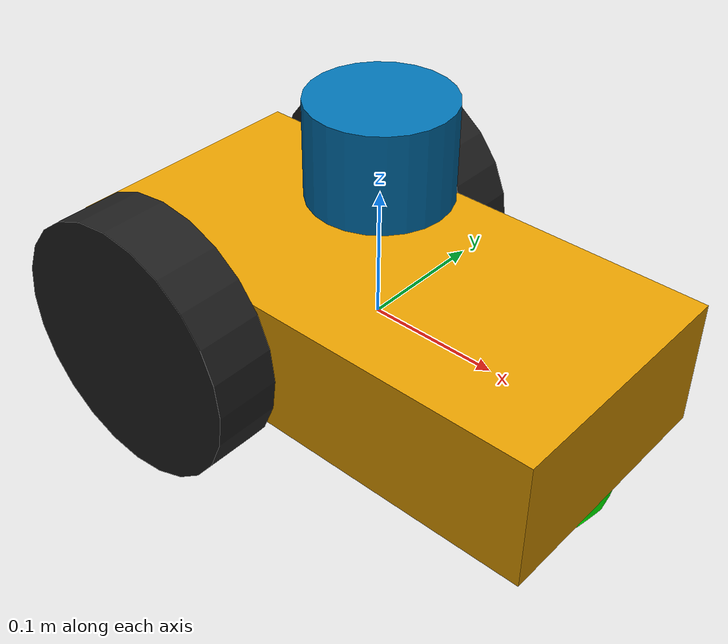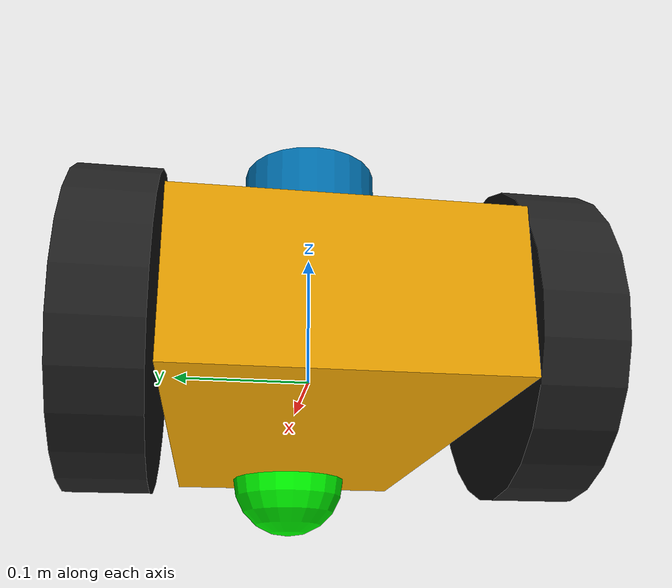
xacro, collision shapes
<?xml version="1.0"?>
<robot name="tono_robot" xmlns:xacro="http://www.ros.org/wiki/xacro">
  <link name="base_link">

    <visual>
      <geometry>
        <box size="0.400 0.200 0.100"/>
      </geometry>
    </visual>

    <collision>
      <geometry>
        <box size="0.400 0.200 0.100"/>
      </geometry>
    </collision>

   <inertial>
    <origin xyz="0 0 0"/>
    <mass value="0.500"/>
    <inertia ixx="0.0020833333" ixy="0" ixz="0" iyy="0.0070833333" iyz="0" izz="0.0083333333"/>
   </inertial>
  </link>

  <link name="left_wheel_link">
    <visual>
      <geometry>
        <cylinder radius="0.1" length="0.05"/>
      </geometry>
      <origin xyz="0 0 0" rpy="0 0 0"/>
      <material name="black"/>
    </visual>

    <collision>
      <geometry>
        <cylinder radius="0.1" length="0.05"/>
      </geometry>
    </collision>

   <inertial>
    <origin xyz="0 0 0"/>
    <mass value="0.500"/>
    <inertia ixx="0.0013541667" ixy="0" ixz="0" iyy="0.0013541667" iyz="0" izz="0.0025"/>
   </inertial>

  </link>

  <joint name="left_wheel_joint" type="continuous">
    <parent link="base_link"/>
    <child link="left_wheel_link"/>
    <origin rpy="-1.5707 0 0" xyz="-0.100 0.130 0"/>
    <axis xyz="0 0 1"/>
  </joint>

  <link name="right_wheel_link">
    <visual>
      <geometry>
        <cylinder radius="0.1" length="0.05"/>
      </geometry>
      <origin xyz="0 0 0" rpy="0 0 0"/>
      <material name="black"/>
    </visual>

    <collision>
      <geometry>
        <cylinder radius="0.1" length="0.05"/>
      </geometry>
    </collision>

   <inertial>
    <origin xyz="0 0 0"/>
    <mass value="0.500"/>
    <inertia ixx="0.0013541667" ixy="0" ixz="0" iyy="0.0013541667" iyz="0" izz="0.0025"/>
   </inertial>

  </link>

  <joint name="right_wheel_joint" type="continuous">
    <parent link="base_link"/>
    <child link="right_wheel_link"/>
    <origin rpy="1.5707 0 0" xyz="-0.100 -0.130 0"/>
    <axis xyz="0 0 -1"/>
  </joint>

  <link name="caster_link">
    <visual>
      <geometry>
        <sphere radius="0.05"/>
      </geometry>
      <material name="green">
        <color rgba="0 1 0 1"/>
      </material>
    </visual>

    <collision>
      <geometry>
        <sphere radius="0.05"/>
      </geometry>
    </collision>

   <inertial>
    <origin xyz="0 0 0"/>
    <mass value="0.500"/>
    <inertia ixx="0.00025" ixy="0" ixz="0" iyy="0.00025"  iyz="0" izz="0.00025"/>
   </inertial>

  </link>

  <joint name="caster_joint" type="fixed">
   <parent link="base_link"/>
   <child link="caster_link"/>
   <origin xyz="0.150 0 -0.050"/>
 </joint>

  <xacro:include filename="$(find velodyne_description)/urdf/VLP-16.urdf.xacro"/>
  <VLP-16 parent="base_link" name="velodyne" topic="/velodyne_points" hz="10" samples="440" min_range="0.1">
    <origin xyz="0.0 0.0 0.1" rpy="0 0 0" />
  </VLP-16>

  <!-- ===============  Transmission =============== -->
 <transmission name="left_wheel_trans">
      <type>transmission_interface/SimpleTransmission</type>
      <joint name="left_wheel_joint">
  <hardwareInterface>VelocityJointInterface</hardwareInterface>
      </joint>
   <actuator name="left_wheel_motor">
  <hardwareInterface>VelocityJointInterface</hardwareInterface>
  <mechanicalReduction>30</mechanicalReduction>
      </actuator>
 </transmission>
 <transmission name="right_wheel_trans">
      <type>transmission_interface/SimpleTransmission</type>
      <joint name="right_wheel_joint">
  <hardwareInterface>VelocityJointInterface</hardwareInterface>
      </joint>
   <actuator name="right_wheel_motor">
  <hardwareInterface>VelocityJointInterface</hardwareInterface>
  <mechanicalReduction>30</mechanicalReduction>
      </actuator>
 </transmission>

  <!-- =============== Gazebo =============== -->
  <gazebo>
    <plugin name="gazebo_ros_control" filename="libgazebo_ros_control.so">
      <robotNamespace>tono_robot</robotNamespace>
      <robotSimType>gazebo_ros_control/DefaultRobotHWSim</robotSimType>
      <legacyModeNS>true</legacyModeNS>
    </plugin>
  </gazebo>

 <gazebo reference="base_link">
   <selfCollide>true</selfCollide>
    <mu1 value="0.05" />
    <mu2 value="0.05" />
  </gazebo>

 <gazebo reference="left_wheel_link">
   <selfCollide>true</selfCollide>
    <mu1 value="0.8" />
    <mu2 value="0.8" />
  </gazebo>

 <gazebo reference="right_wheel_link">
   <selfCollide>true</selfCollide>
    <mu1 value="0.8" />
    <mu2 value="0.8" />
  </gazebo>

 <gazebo reference="caster_link">
   <selfCollide>true</selfCollide>
     <!-- This caster is no frictional resistance. -->
    <mu1 value="0.0" />
    <mu2 value="0.0" />
  </gazebo>

</robot>

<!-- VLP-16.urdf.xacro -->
<robot xmlns:xacro="http://www.ros.org/wiki/xacro" name="VLP-16">
  <xacro:property name="M_PI" value="3.1415926535897931" />
  <xacro:macro name="VLP-16" params="*origin is_sim:=true parent:=base_link name:=velodyne tf_prefix:='' topic:=/velodyne_points organize_cloud:=false hz:=10 lasers:=16 samples:=1875 collision_range:=0.3 min_range:=0.0 max_range:=100.0 noise:=0.008 min_angle:=-${M_PI} max_angle:=${M_PI} gpu:=false">

    <joint name="${name}_base_mount_joint" type="fixed">
      <xacro:insert_block name="origin" />
      <parent link="${parent}"/>
      <child link="${name}_base_link"/>
    </joint>

    <link name="${name}_base_link">
      <inertial>
        <mass value="0.83"/>
        <origin xyz="0 0 0.03585"/>
        <inertia ixx="${(0.83 * (3.0*0.0516*0.0516 + 0.0717*0.0717)) / 12.0}" ixy="0" ixz="0"
          iyy="${(0.83 * (3.0*0.0516*0.0516 + 0.0717*0.0717)) / 12.0}" iyz="0"
          izz="${0.5 * 0.83 * (0.0516*0.0516)}"/>
      </inertial>
      <visual>
        <geometry>
          <mesh filename="package://velodyne_description/meshes/VLP16_base_1.dae" />
        </geometry>
      </visual>
      <visual>
        <geometry>
          <mesh filename="package://velodyne_description/meshes/VLP16_base_2.dae" />
        </geometry>
      </visual>
      <collision>
        <origin rpy="0 0 0" xyz="0 0 0.03585"/>
        <geometry>
          <cylinder radius="0.0516" length="0.0717"/>
        </geometry>
      </collision>
    </link>

    <joint name="${name}_base_scan_joint" type="fixed" >
      <origin xyz="0 0 0.0377" rpy="0 0 0" />
      <parent link="${name}_base_link" />
      <child link="${name}"/>
    </joint>

    <link name="${name}">
      <inertial>
        <mass value="0.01"/>
        <origin xyz="0 0 0"/>
        <inertia ixx="1e-7" ixy="0" ixz="0" iyy="1e-7" iyz="0" izz="1e-7"/>
      </inertial>
      <visual>
        <origin xyz="0 0 -0.0377" />
        <geometry>
          <mesh filename="package://velodyne_description/meshes/VLP16_scan.dae" />
        </geometry>
      </visual>
      <collision>
        <geometry>
          <sphere radius="0"/>
        </geometry>
      </collision>
    </link>

    <!-- Gazebo requires the velodyne_gazebo_plugins package -->
    <xacro:if value="${is_sim}">
        <gazebo reference="${name}">
            <xacro:if value="${gpu}">
                <sensor type="gpu_ray" name="${name}-VLP16">
                <pose>0 0 0 0 0 0</pose>
                <visualize>false</visualize>
                <update_rate>${hz}</update_rate>
                <ray>
                    <scan>
                    <horizontal>
                        <samples>${samples}</samples>
                        <resolution>1</resolution>
                        <min_angle>${min_angle}</min_angle>
                        <max_angle>${max_angle}</max_angle>
                    </horizontal>
                    <vertical>
                        <samples>${lasers}</samples>
                        <resolution>1</resolution>
                        <min_angle>-${15.0*M_PI/180.0}</min_angle>
                        <max_angle> ${15.0*M_PI/180.0}</max_angle>
                    </vertical>
                    </scan>
                    <range>
                    <min>${collision_range}</min>
                    <max>${max_range+1}</max>
                    <resolution>0.001</resolution>
                    </range>
                    <noise>
                    <type>gaussian</type>
                    <mean>0.0</mean>
                    <stddev>0.0</stddev>
                    </noise>
                </ray>
                <plugin name="gazebo_ros_laser_controller" filename="libgazebo_ros_velodyne_laser.so">
                    <ros>
                    <namespace>/${name}</namespace>
                    <remapping>~/out:=${topic}</remapping>
                    </ros>
                    <tf_prefix>${tf_prefix}</tf_prefix>
                    <frame_name>${name}</frame_name>
                    <organize_cloud>${organize_cloud}</organize_cloud>
                    <min_range>${min_range}</min_range>
                    <max_range>${max_range}</max_range>
                    <gaussian_noise>${noise}</gaussian_noise>
                </plugin>
                </sensor>
            </xacro:if>
            <xacro:unless value="${gpu}">
                <sensor type="ray" name="${name}-VLP16">
                <pose>0 0 0 0 0 0</pose>
                <visualize>false</visualize>
                <update_rate>${hz}</update_rate>
                <ray>
                    <scan>
                    <horizontal>
                        <samples>${samples}</samples>
                        <resolution>1</resolution>
                        <min_angle>${min_angle}</min_angle>
                        <max_angle>${max_angle}</max_angle>
                    </horizontal>
                    <vertical>
                        <samples>${lasers}</samples>
                        <resolution>1</resolution>
                        <min_angle>-${15.0*M_PI/180.0}</min_angle>
                        <max_angle> ${15.0*M_PI/180.0}</max_angle>
                    </vertical>
                    </scan>
                    <range>
                    <min>${collision_range}</min>
                    <max>${max_range+1}</max>
                    <resolution>0.001</resolution>
                    </range>
                    <noise>
                    <type>gaussian</type>
                    <mean>0.0</mean>
                    <stddev>0.0</stddev>
                    </noise>
                </ray>
                <plugin name="gazebo_ros_laser_controller" filename="libgazebo_ros_velodyne_laser.so">
                    <ros>
                    <namespace>/${name}</namespace>
                    <remapping>~/out:=${topic}</remapping>
                    </ros>
                    <tf_prefix>${tf_prefix}</tf_prefix>
                    <frame_name>${name}</frame_name>
                    <organize_cloud>${organize_cloud}</organize_cloud>
                    <min_range>${min_range}</min_range>
                    <max_range>${max_range}</max_range>
                    <gaussian_noise>${noise}</gaussian_noise>
                </plugin>
                </sensor>
            </xacro:unless>
        </gazebo>
    </xacro:if>

  </xacro:macro>
</robot>
